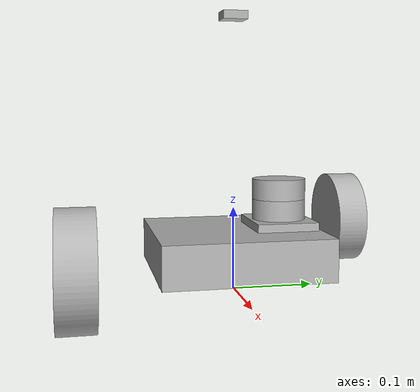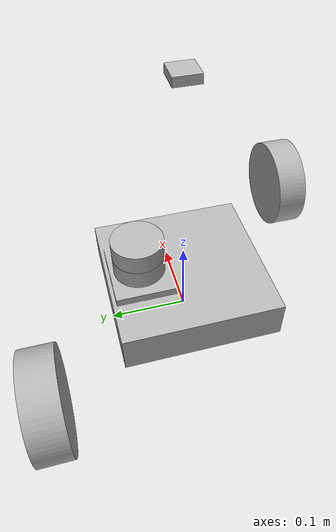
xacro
<?xml version="1.0" ?>
<robot name="mobile" xmlns:xacro="http://www.ros.org/wiki/xacro">

<xacro:include filename="$(find mobile_description)/urdf/materials.xacro" />
<xacro:include filename="$(find mobile_description)/urdf/mobile.trans" />
<xacro:include filename="$(find mobile_description)/urdf/mobile.gazebo" />
<link name="base_link">
  <inertial>
    <origin xyz="0.004366302399893529 -4.78586553112421e-16 0.1724423094093739" rpy="0 0 0"/>
    <mass value="50.124334037291106"/>
    <inertia ixx="0.739222" iyy="1.189387" izz="1.325001" ixy="0.0" iyz="-0.0" ixz="-0.031779"/>
  </inertial>
  <visual>
    <origin xyz="0 0 0" rpy="0 0 0"/>
    <geometry>
      <mesh filename="package://mobile_description/meshes/base_link.stl" scale="0.001 0.001 0.001"/>
    </geometry>
    <material name="silver"/>
  </visual>
  <collision>
    <origin xyz="0 0 0" rpy="0 0 0"/>
    <geometry>
      <mesh filename="package://mobile_description/meshes/base_link.stl" scale="0.001 0.001 0.001"/>
    </geometry>
  </collision>
</link>

<link name="rear_right_wheel_1">
  <inertial>
    <origin xyz="-9.631184738623233e-15 -0.01999999999999999 0.0" rpy="0 0 0"/>
    <mass value="3.8533597391687295"/>
    <inertia ixx="0.004277" iyy="0.007526" izz="0.004277" ixy="-0.0" iyz="0.0" ixz="0.0"/>
  </inertial>
  <visual>
    <origin xyz="0.145 0.17 -0.0625" rpy="0 0 0"/>
    <geometry>
      <mesh filename="package://mobile_description/meshes/rear_right_wheel_1.stl" scale="0.001 0.001 0.001"/>
    </geometry>
    <material name="silver"/>
  </visual>
  <collision>
    <origin xyz="0.145 0.17 -0.0625" rpy="0 0 0"/>
    <geometry>
      <mesh filename="package://mobile_description/meshes/rear_right_wheel_1.stl" scale="0.001 0.001 0.001"/>
    </geometry>
  </collision>
</link>

<link name="front_right_wheel_1">
  <inertial>
    <origin xyz="9.742207041085749e-15 -0.01999999999999999 1.3877787807814457e-17" rpy="0 0 0"/>
    <mass value="3.8533597391687295"/>
    <inertia ixx="0.004277" iyy="0.007526" izz="0.004277" ixy="-0.0" iyz="-0.0" ixz="0.0"/>
  </inertial>
  <visual>
    <origin xyz="-0.145 0.17 -0.0625" rpy="0 0 0"/>
    <geometry>
      <mesh filename="package://mobile_description/meshes/front_right_wheel_1.stl" scale="0.001 0.001 0.001"/>
    </geometry>
    <material name="silver"/>
  </visual>
  <collision>
    <origin xyz="-0.145 0.17 -0.0625" rpy="0 0 0"/>
    <geometry>
      <mesh filename="package://mobile_description/meshes/front_right_wheel_1.stl" scale="0.001 0.001 0.001"/>
    </geometry>
  </collision>
</link>

<link name="front_left_wheel_1">
  <inertial>
    <origin xyz="2.7755575615628914e-17 0.019999999999999962 0.0" rpy="0 0 0"/>
    <mass value="3.8533597391687295"/>
    <inertia ixx="0.004277" iyy="0.007526" izz="0.004277" ixy="-0.0" iyz="-0.0" ixz="0.0"/>
  </inertial>
  <visual>
    <origin xyz="-0.145 -0.17 -0.0625" rpy="0 0 0"/>
    <geometry>
      <mesh filename="package://mobile_description/meshes/front_left_wheel_1.stl" scale="0.001 0.001 0.001"/>
    </geometry>
    <material name="silver"/>
  </visual>
  <collision>
    <origin xyz="-0.145 -0.17 -0.0625" rpy="0 0 0"/>
    <geometry>
      <mesh filename="package://mobile_description/meshes/front_left_wheel_1.stl" scale="0.001 0.001 0.001"/>
    </geometry>
  </collision>
</link>

<link name="rear_left_wheel_1">
  <inertial>
    <origin xyz="-5.551115123125783e-17 0.019999999999999962 0.0" rpy="0 0 0"/>
    <mass value="3.8533597391687295"/>
    <inertia ixx="0.004277" iyy="0.007526" izz="0.004277" ixy="-0.0" iyz="-0.0" ixz="-0.0"/>
  </inertial>
  <visual>
    <origin xyz="0.145 -0.17 -0.0625" rpy="0 0 0"/>
    <geometry>
      <mesh filename="package://mobile_description/meshes/rear_left_wheel_1.stl" scale="0.001 0.001 0.001"/>
    </geometry>
    <material name="silver"/>
  </visual>
  <collision>
    <origin xyz="0.145 -0.17 -0.0625" rpy="0 0 0"/>
    <geometry>
      <mesh filename="package://mobile_description/meshes/rear_left_wheel_1.stl" scale="0.001 0.001 0.001"/>
    </geometry>
  </collision>
</link>

<link name="lidar_1">
  <inertial>
    <origin xyz="-9.4946098205817e-10 6.800340879809758e-16 0.019779238971984525" rpy="0 0 0"/>
    <mass value="1.1942370825491377"/>
    <inertia ixx="0.000518" iyy="0.000518" izz="0.000724" ixy="-0.0" iyz="-0.0" ixz="-0.0"/>
  </inertial>
  <visual>
    <origin xyz="-0.205 -0.0 -0.3275" rpy="0 0 0"/>
    <geometry>
      <mesh filename="package://mobile_description/meshes/lidar_1.stl" scale="0.001 0.001 0.001"/>
    </geometry>
    <material name="silver"/>
  </visual>
  <collision>
    <origin xyz="-0.205 -0.0 -0.3275" rpy="0 0 0"/>
    <geometry>
      <mesh filename="package://mobile_description/meshes/lidar_1.stl" scale="0.001 0.001 0.001"/>
    </geometry>
  </collision>
</link>

<link name="imu_1">
  <inertial>
    <origin xyz="0.0 0.0 0.0050000000000000044" rpy="0 0 0"/>
    <mass value="0.07064999999999999"/>
    <inertia ixx="6e-06" iyy="6e-06" izz="1.1e-05" ixy="0.0" iyz="0.0" ixz="0.0"/>
  </inertial>
  <visual>
    <origin xyz="-0.0 -0.0 -0.3275" rpy="0 0 0"/>
    <geometry>
      <mesh filename="package://mobile_description/meshes/imu_1.stl" scale="0.001 0.001 0.001"/>
    </geometry>
    <material name="silver"/>
  </visual>
  <collision>
    <origin xyz="-0.0 -0.0 -0.3275" rpy="0 0 0"/>
    <geometry>
      <mesh filename="package://mobile_description/meshes/imu_1.stl" scale="0.001 0.001 0.001"/>
    </geometry>
  </collision>
</link>

<joint name="Revolute 1" type="continuous">
  <origin xyz="-0.145 -0.17 0.0625" rpy="0 0 0"/>
  <parent link="base_link"/>
  <child link="rear_right_wheel_1"/>
  <axis xyz="0.0 -1.0 0.0"/>
</joint>

<joint name="Revolute 2" type="continuous">
  <origin xyz="0.145 -0.17 0.0625" rpy="0 0 0"/>
  <parent link="base_link"/>
  <child link="front_right_wheel_1"/>
  <axis xyz="0.0 -1.0 0.0"/>
</joint>

<joint name="Revolute 3" type="continuous">
  <origin xyz="0.145 0.17 0.0625" rpy="0 0 0"/>
  <parent link="base_link"/>
  <child link="front_left_wheel_1"/>
  <axis xyz="0.0 1.0 0.0"/>
</joint>

<joint name="Revolute 4" type="continuous">
  <origin xyz="-0.145 0.17 0.0625" rpy="0 0 0"/>
  <parent link="base_link"/>
  <child link="rear_left_wheel_1"/>
  <axis xyz="0.0 1.0 0.0"/>
</joint>

<joint name="Rigid 5" type="fixed">
  <origin xyz="0.205 0.0 0.3275" rpy="0 0 0"/>
  <parent link="base_link"/>
  <child link="lidar_1"/>
</joint>

<joint name="Rigid 6" type="fixed">
  <origin xyz="0.0 0.0 0.3275" rpy="0 0 0"/>
  <parent link="base_link"/>
  <child link="imu_1"/>
</joint>

</robot>

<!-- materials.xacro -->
<robot name="mobile" xmlns:xacro="http://www.ros.org/wiki/xacro" >

<material name="silver">
  <color rgba="0.700 0.700 0.700 1.000"/>
</material>

</robot>

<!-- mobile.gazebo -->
<robot name="mobile" xmlns:xacro="http://www.ros.org/wiki/xacro" >

<xacro:property name="body_color" value="Gazebo/Silver" />

<gazebo>
  <plugin name="control" filename="libgazebo_ros_control.so"/>
</gazebo>
<gazebo reference="base_link">
  <material>${body_color}</material>
  <mu1>0.2</mu1>
  <mu2>0.2</mu2>
  <selfCollide>true</selfCollide>
  <gravity>true</gravity>
</gazebo>

<gazebo reference="rear_right_wheel_1">
  <material>${body_color}</material>
  <mu1>0.2</mu1>
  <mu2>0.2</mu2>
  <selfCollide>true</selfCollide>
</gazebo>

<gazebo reference="front_right_wheel_1">
  <material>${body_color}</material>
  <mu1>0.2</mu1>
  <mu2>0.2</mu2>
  <selfCollide>true</selfCollide>
</gazebo>

<gazebo reference="front_left_wheel_1">
  <material>${body_color}</material>
  <mu1>0.2</mu1>
  <mu2>0.2</mu2>
  <selfCollide>true</selfCollide>
</gazebo>

<gazebo reference="rear_left_wheel_1">
  <material>${body_color}</material>
  <mu1>0.2</mu1>
  <mu2>0.2</mu2>
  <selfCollide>true</selfCollide>
</gazebo>

<gazebo reference="lidar_1">
  <material>${body_color}</material>
  <mu1>0.2</mu1>
  <mu2>0.2</mu2>
  <selfCollide>true</selfCollide>
</gazebo>

<gazebo reference="imu_1">
  <material>${body_color}</material>
  <mu1>0.2</mu1>
  <mu2>0.2</mu2>
  <selfCollide>true</selfCollide>
</gazebo>

</robot>
